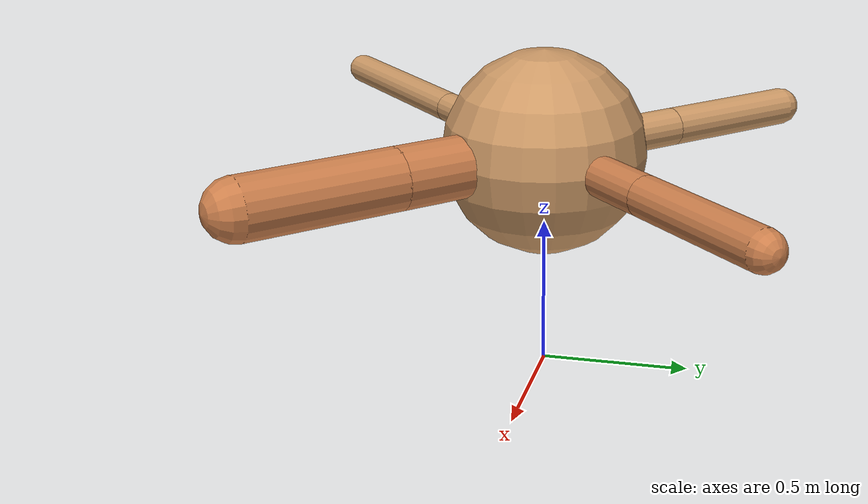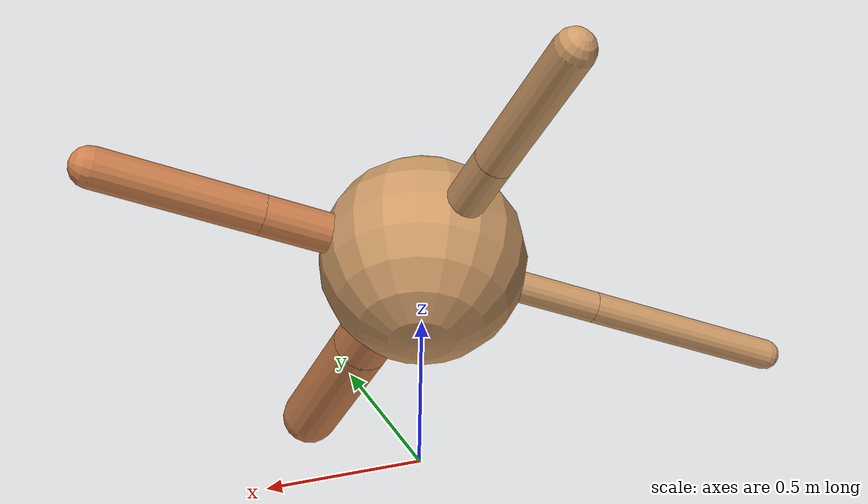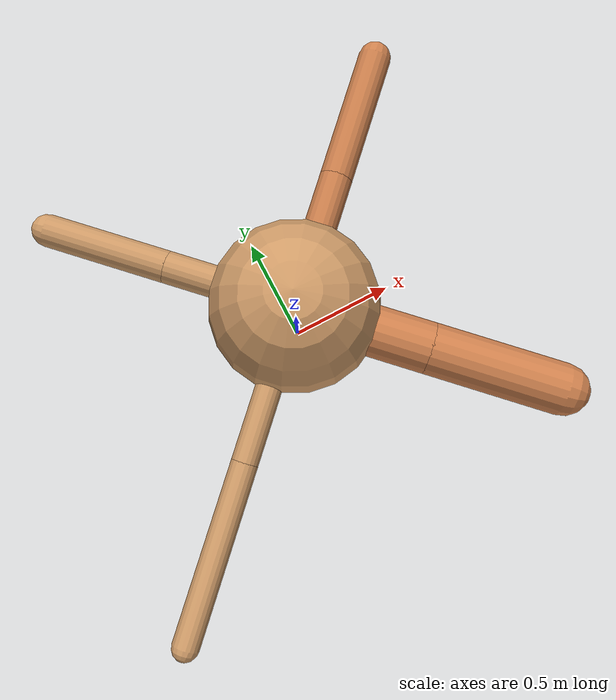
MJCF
<?xml version="1.0" ?>
<mujoco model="ant">

	<compiler angle="degree" coordinate="local" inertiafromgeom="true"/>

	<option integrator="RK4" timestep="0.01"/>

	<custom>

		<numeric data="0.0 0.0 0.55 1.0 0.0 0.0 0.0 0.0 1.0 0.0 -1.0 0.0 -1.0 0.0 1.0" name="init_qpos"/>

	</custom>

	<default>

		<joint armature="1" damping="1" limited="true"/>

		<geom conaffinity="0" condim="3" density="5.0" friction="1.5 0.1 0.1" margin="0.01" rgba="0.8 0.6 0.4 1"/>

	</default>

	<worldbody>

		<body name="torso" pos="0 0 0.75">

			<geom name="torso_geom" pos="0 0 0" size="0.34370485642012427" type="sphere"/>

			<!--joint armature="0" damping="0" limited="false" margin="0.01" name="root" pos="0 0 0" type="free"/-->

			<body name="front_left_leg" pos="0 0 0">

				<geom fromto="0 0 0 0.2 0.2 0" name="aux_1_geom" size="0.06724020098284042" type="capsule" rgba=".8 .5 .3 1"/>

				<body name="aux_1" pos="0.2 0.2 0">

					<joint axis="0 0 1" name="hip_1" pos="0.0 0.0 0.0" range="-40 40" type="hinge"/>

					<geom fromto="0 0 0 0.1913541946104419 0.1913541946104419 0" name="left_leg_geom" size="0.06724020098284042" type="capsule" rgba=".8 .5 .3 1"/>

					<body pos="0.1913541946104419 0.1913541946104419 0" name="front_left_foot">

						<joint axis="-1 1 0" name="ankle_1" pos="0.0 0.0 0.0" range="30 100" type="hinge"/>

						<geom fromto="0 0 0 0.3827083892208838 0.3827083892208838 0" name="left_ankle_geom" size="0.06724020098284042" type="capsule" rgba=".8 .5 .3 1"/>

					</body>

				</body>

			</body>

			<body name="front_right_leg" pos="0 0 0">

				<geom fromto="0 0 0 -0.2 0.2 0" name="aux_2_geom" size="0.06562756954889244" type="capsule"/>

				<body name="aux_2" pos="-0.2 0.2 0">

					<joint axis="0 0 1" name="hip_2" pos="0.0 0.0 0.0" range="-40 40" type="hinge"/>

					<geom fromto="0 0 0 -0.17691425301119967 0.17691425301119967 0" name="right_leg_geom" size="0.06562756954889244" type="capsule"/>

					<body pos="-0.17691425301119967 0.17691425301119967 0" name="front_right_foot">

						<joint axis="1 1 0" name="ankle_2" pos="0.0 0.0 0.0" range="-100 -30" type="hinge"/>

						<geom fromto="0 0 0 -0.35382850602239935 0.35382850602239935 0" name="right_ankle_geom" size="0.06562756954889244" type="capsule"/>

					</body>

				</body>

			</body>

			<body name="left_back_leg" pos="0 0 0">

				<geom fromto="0 0 0 -0.2 -0.2 0" name="aux_3_geom" size="0.053649402908041585" type="capsule"/>

				<body name="aux_3" pos="-0.2 -0.2 0">

					<joint axis="0 0 1" name="hip_3" pos="0.0 0.0 0.0" range="-40 40" type="hinge"/>

					<geom fromto="0 0 0 -0.24953928991025798 -0.24953928991025798 0" name="back_leg_geom" size="0.053649402908041585" type="capsule"/>

					<body pos="-0.24953928991025798 -0.24953928991025798 0" name="left_back_foot">

						<joint axis="-1 1 0" name="ankle_3" pos="0.0 0.0 0.0" range="-100 -30" type="hinge"/>

						<geom fromto="0 0 0 -0.49907857982051596 -0.49907857982051596 0" name="third_ankle_geom" size="0.053649402908041585" type="capsule"/>

					</body>

				</body>

			</body>

			<body name="right_back_leg" pos="0 0 0">

				<geom fromto="0 0 0 0.2 -0.2 0" name="aux_4_geom" size="0.10408583768384932" type="capsule" rgba=".8 .5 .3 1"/>

				<body name="aux_4" pos="0.2 -0.2 0">

					<joint axis="0 0 1" name="hip_4" pos="0.0 0.0 0.0" range="-40 40" type="hinge"/>

					<geom fromto="0 0 0 0.18994852775953874 -0.18994852775953874 0" name="rightback_leg_geom" size="0.10408583768384932" type="capsule" rgba=".8 .5 .3 1"/>

					<body pos="0.18994852775953874 -0.18994852775953874 0" name="right_back_foot">

						<joint axis="1 1 0" name="ankle_4" pos="0.0 0.0 0.0" range="30 100" type="hinge"/>

						<geom fromto="0 0 0 0.3798970555190775 -0.3798970555190775 0" name="fourth_ankle_geom" size="0.10408583768384932" type="capsule" rgba=".8 .5 .3 1"/>

					</body>

				</body>

			</body>

		</body>

	</worldbody>

	<actuator>

		<motor ctrllimited="true" ctrlrange="-1.0 1.0" joint="hip_4" gear="150"/>

		<motor ctrllimited="true" ctrlrange="-1.0 1.0" joint="ankle_4" gear="150"/>

		<motor ctrllimited="true" ctrlrange="-1.0 1.0" joint="hip_1" gear="150"/>

		<motor ctrllimited="true" ctrlrange="-1.0 1.0" joint="ankle_1" gear="150"/>

		<motor ctrllimited="true" ctrlrange="-1.0 1.0" joint="hip_2" gear="150"/>

		<motor ctrllimited="true" ctrlrange="-1.0 1.0" joint="ankle_2" gear="150"/>

		<motor ctrllimited="true" ctrlrange="-1.0 1.0" joint="hip_3" gear="150"/>

		<motor ctrllimited="true" ctrlrange="-1.0 1.0" joint="ankle_3" gear="150"/>

	</actuator>

</mujoco>
